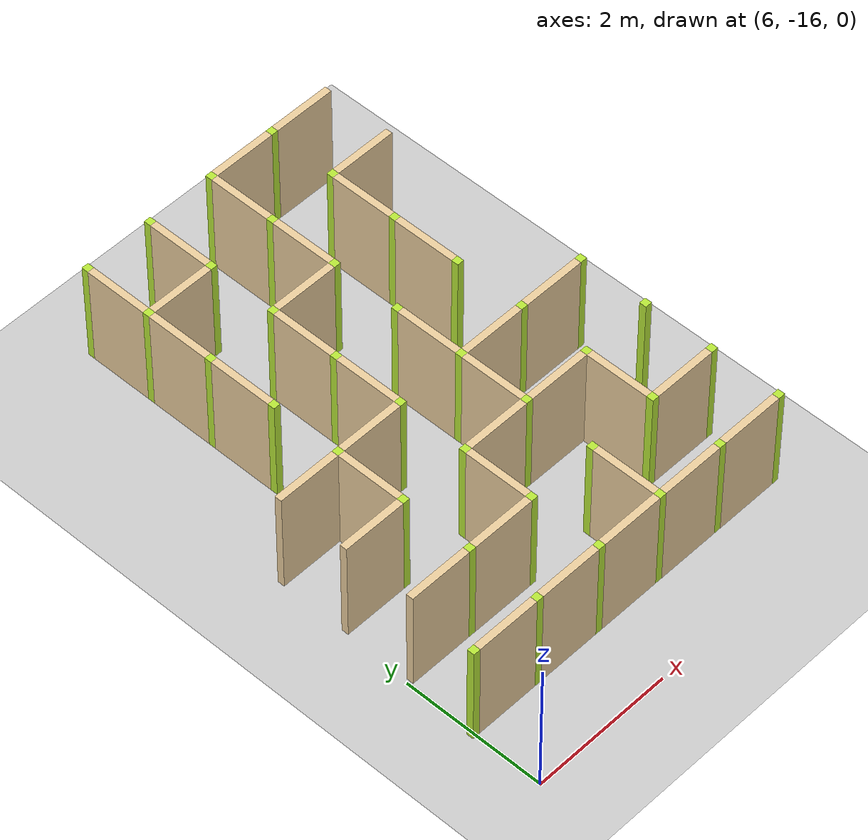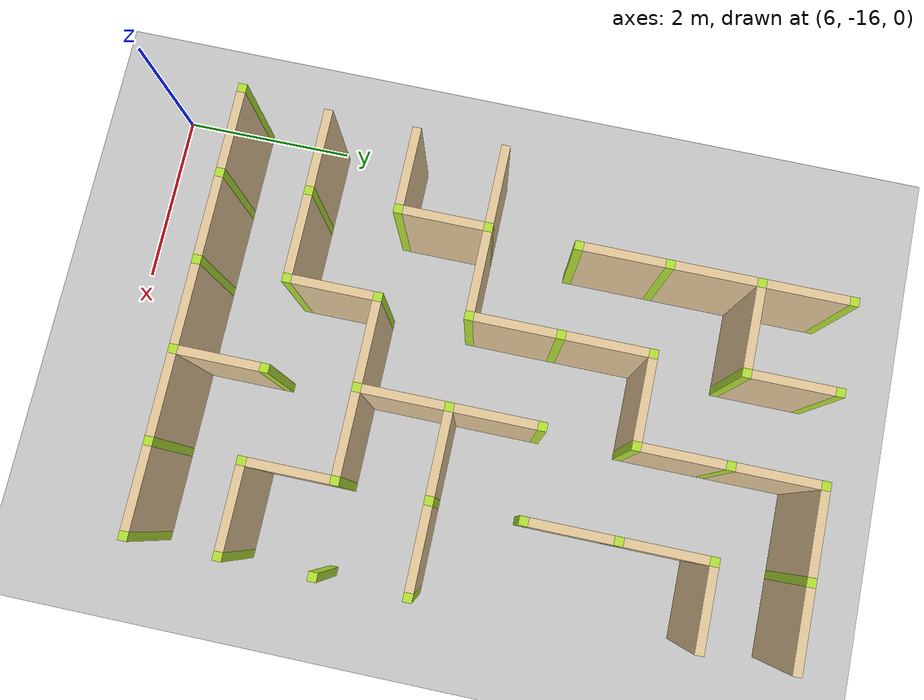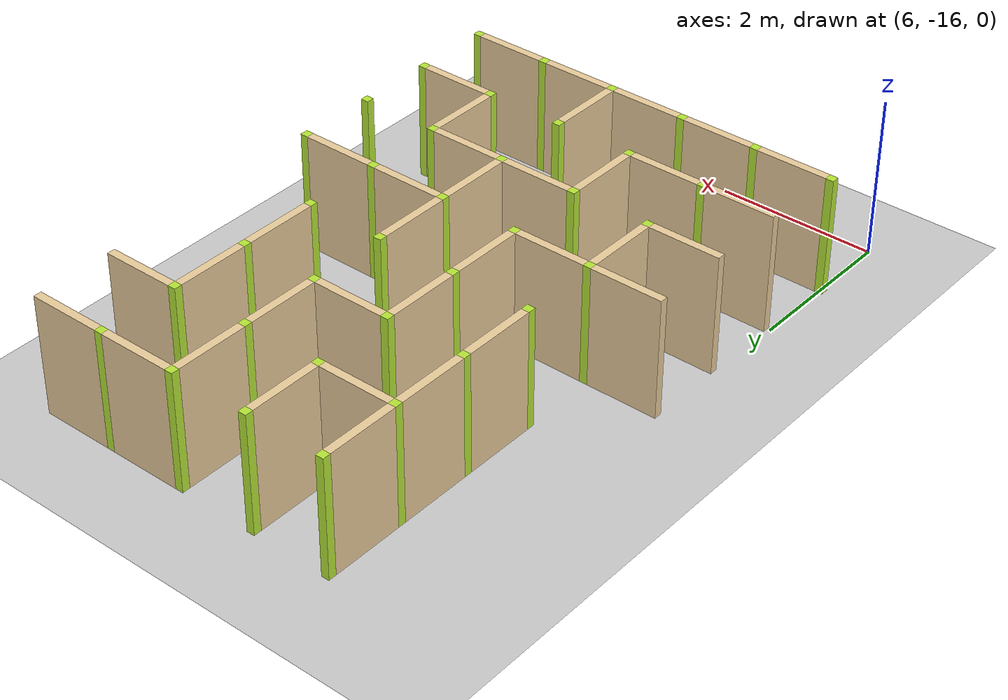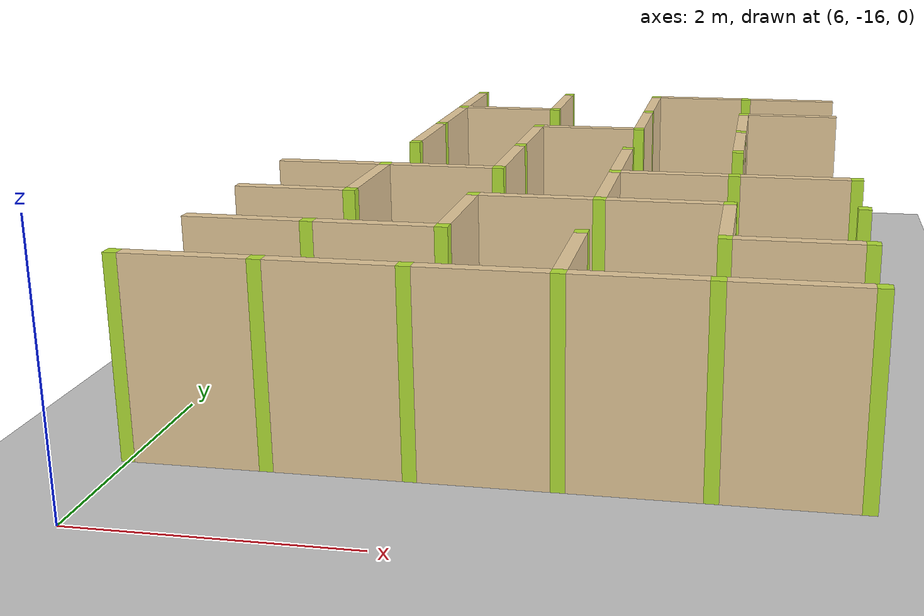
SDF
<sdf version="1.4">
 <world name="maze_world">
  <model name="ground">
   <static>true</static>
   <link name="ground_link">
    <collision name="collision1"><geometry><plane><normal>0 0 1</normal></plane></geometry></collision>
    <visual name="visual1"><geometry><plane><normal>0 0 1</normal><size>100 100</size></plane></geometry></visual>
   </link>
  </model>
  <model name="Untitled">
   <link name="Wall_7_8_v">
    <collision name="Wall_0_Collision">
     <geometry><box><size>0.9 0.1 1.5</size></box></geometry>
     <pose>0 0 0.75 0 -0 0</pose>
    </collision>
    <visual name="Wall_0_Visual">
     <pose>0 0 0.75 0 -0 0</pose>
     <geometry><box><size>0.9 0.1 1.5</size></box></geometry>
     <material>
      <script><uri>file://media/materials/scripts/gazebo.material</uri><name>Gazebo/Grey</name></script>
      <ambient>0.921569 0.807843 0.615686 1</ambient>
     </material>
     <meta><layer>0</layer></meta>
    </visual>
    <pose>7 -8.5 0 0 -0 1.5708</pose>
   </link>
   <link name="Joint_7_-8">
    <collision name="Wall_2_Collision">
     <geometry><box><size>0.1 0.1 1.5</size></box></geometry>
     <pose>0 0 0.75 0 -0 0</pose>
    </collision>
    <visual name="Wall_2_Visual">
     <pose>0 0 0.75 0 -0 0</pose>
     <geometry><box><size>0.1 0.1 1.5</size></box></geometry>
     <material>
      <script><uri>file://media/materials/scripts/gazebo.material</uri><name>Gazebo/Grey</name></script>
      <ambient>0.721569 0.907843 0.215686 1</ambient>
     </material>
     <meta><layer>0</layer></meta>
    </visual>
    <pose>7 -8 0 0 -0 0</pose>
   </link>
   <link name="Wall_8_8_v">
    <collision name="Wall_0_Collision">
     <geometry><box><size>0.9 0.1 1.5</size></box></geometry>
     <pose>0 0 0.75 0 -0 0</pose>
    </collision>
    <visual name="Wall_0_Visual">
     <pose>0 0 0.75 0 -0 0</pose>
     <geometry><box><size>0.9 0.1 1.5</size></box></geometry>
     <material>
      <script><uri>file://media/materials/scripts/gazebo.material</uri><name>Gazebo/Grey</name></script>
      <ambient>0.921569 0.807843 0.615686 1</ambient>
     </material>
     <meta><layer>0</layer></meta>
    </visual>
    <pose>8 -8.5 0 0 -0 1.5708</pose>
   </link>
   <link name="Joint_8_-8">
    <collision name="Wall_2_Collision">
     <geometry><box><size>0.1 0.1 1.5</size></box></geometry>
     <pose>0 0 0.75 0 -0 0</pose>
    </collision>
    <visual name="Wall_2_Visual">
     <pose>0 0 0.75 0 -0 0</pose>
     <geometry><box><size>0.1 0.1 1.5</size></box></geometry>
     <material>
      <script><uri>file://media/materials/scripts/gazebo.material</uri><name>Gazebo/Grey</name></script>
      <ambient>0.721569 0.907843 0.215686 1</ambient>
     </material>
     <meta><layer>0</layer></meta>
    </visual>
    <pose>8 -8 0 0 -0 0</pose>
   </link>
   <link name="Wall_9_8_h">
    <collision name="Wall_0_Collision">
     <geometry><box><size>0.9 0.1 1.5</size></box></geometry>
     <pose>0 0 0.75 0 -0 0</pose>
    </collision>
    <visual name="Wall_0_Visual">
     <pose>0 0 0.75 0 -0 0</pose>
     <geometry><box><size>0.9 0.1 1.5</size></box></geometry>
     <material>
      <script><uri>file://media/materials/scripts/gazebo.material</uri><name>Gazebo/Grey</name></script>
      <ambient>0.921569 0.807843 0.615686 1</ambient>
     </material>
     <meta><layer>0</layer></meta>
    </visual>
    <pose>9.5 -8 0 0 -0 0</pose>
   </link>
   <link name="Wall_9_8_v">
    <collision name="Wall_0_Collision">
     <geometry><box><size>0.9 0.1 1.5</size></box></geometry>
     <pose>0 0 0.75 0 -0 0</pose>
    </collision>
    <visual name="Wall_0_Visual">
     <pose>0 0 0.75 0 -0 0</pose>
     <geometry><box><size>0.9 0.1 1.5</size></box></geometry>
     <material>
      <script><uri>file://media/materials/scripts/gazebo.material</uri><name>Gazebo/Grey</name></script>
      <ambient>0.921569 0.807843 0.615686 1</ambient>
     </material>
     <meta><layer>0</layer></meta>
    </visual>
    <pose>9 -8.5 0 0 -0 1.5708</pose>
   </link>
   <link name="Joint_9_-8">
    <collision name="Wall_2_Collision">
     <geometry><box><size>0.1 0.1 1.5</size></box></geometry>
     <pose>0 0 0.75 0 -0 0</pose>
    </collision>
    <visual name="Wall_2_Visual">
     <pose>0 0 0.75 0 -0 0</pose>
     <geometry><box><size>0.1 0.1 1.5</size></box></geometry>
     <material>
      <script><uri>file://media/materials/scripts/gazebo.material</uri><name>Gazebo/Grey</name></script>
      <ambient>0.721569 0.907843 0.215686 1</ambient>
     </material>
     <meta><layer>0</layer></meta>
    </visual>
    <pose>9 -8 0 0 -0 0</pose>
   </link>
   <link name="Wall_10_8_h">
    <collision name="Wall_0_Collision">
     <geometry><box><size>0.9 0.1 1.5</size></box></geometry>
     <pose>0 0 0.75 0 -0 0</pose>
    </collision>
    <visual name="Wall_0_Visual">
     <pose>0 0 0.75 0 -0 0</pose>
     <geometry><box><size>0.9 0.1 1.5</size></box></geometry>
     <material>
      <script><uri>file://media/materials/scripts/gazebo.material</uri><name>Gazebo/Grey</name></script>
      <ambient>0.921569 0.807843 0.615686 1</ambient>
     </material>
     <meta><layer>0</layer></meta>
    </visual>
    <pose>10.5 -8 0 0 -0 0</pose>
   </link>
   <link name="Joint_10_-8">
    <collision name="Wall_2_Collision">
     <geometry><box><size>0.1 0.1 1.5</size></box></geometry>
     <pose>0 0 0.75 0 -0 0</pose>
    </collision>
    <visual name="Wall_2_Visual">
     <pose>0 0 0.75 0 -0 0</pose>
     <geometry><box><size>0.1 0.1 1.5</size></box></geometry>
     <material>
      <script><uri>file://media/materials/scripts/gazebo.material</uri><name>Gazebo/Grey</name></script>
      <ambient>0.721569 0.907843 0.215686 1</ambient>
     </material>
     <meta><layer>0</layer></meta>
    </visual>
    <pose>10 -8 0 0 -0 0</pose>
   </link>
   <link name="Wall_7_9_h">
    <collision name="Wall_0_Collision">
     <geometry><box><size>0.9 0.1 1.5</size></box></geometry>
     <pose>0 0 0.75 0 -0 0</pose>
    </collision>
    <visual name="Wall_0_Visual">
     <pose>0 0 0.75 0 -0 0</pose>
     <geometry><box><size>0.9 0.1 1.5</size></box></geometry>
     <material>
      <script><uri>file://media/materials/scripts/gazebo.material</uri><name>Gazebo/Grey</name></script>
      <ambient>0.921569 0.807843 0.615686 1</ambient>
     </material>
     <meta><layer>0</layer></meta>
    </visual>
    <pose>7.5 -9 0 0 -0 0</pose>
   </link>
   <link name="Wall_7_9_v">
    <collision name="Wall_0_Collision">
     <geometry><box><size>0.9 0.1 1.5</size></box></geometry>
     <pose>0 0 0.75 0 -0 0</pose>
    </collision>
    <visual name="Wall_0_Visual">
     <pose>0 0 0.75 0 -0 0</pose>
     <geometry><box><size>0.9 0.1 1.5</size></box></geometry>
     <material>
      <script><uri>file://media/materials/scripts/gazebo.material</uri><name>Gazebo/Grey</name></script>
      <ambient>0.921569 0.807843 0.615686 1</ambient>
     </material>
     <meta><layer>0</layer></meta>
    </visual>
    <pose>7 -9.5 0 0 -0 1.5708</pose>
   </link>
   <link name="Joint_7_-9">
    <collision name="Wall_2_Collision">
     <geometry><box><size>0.1 0.1 1.5</size></box></geometry>
     <pose>0 0 0.75 0 -0 0</pose>
    </collision>
    <visual name="Wall_2_Visual">
     <pose>0 0 0.75 0 -0 0</pose>
     <geometry><box><size>0.1 0.1 1.5</size></box></geometry>
     <material>
      <script><uri>file://media/materials/scripts/gazebo.material</uri><name>Gazebo/Grey</name></script>
      <ambient>0.721569 0.907843 0.215686 1</ambient>
     </material>
     <meta><layer>0</layer></meta>
    </visual>
    <pose>7 -9 0 0 -0 0</pose>
   </link>
   <link name="Joint_8_-9">
    <collision name="Wall_2_Collision">
     <geometry><box><size>0.1 0.1 1.5</size></box></geometry>
     <pose>0 0 0.75 0 -0 0</pose>
    </collision>
    <visual name="Wall_2_Visual">
     <pose>0 0 0.75 0 -0 0</pose>
     <geometry><box><size>0.1 0.1 1.5</size></box></geometry>
     <material>
      <script><uri>file://media/materials/scripts/gazebo.material</uri><name>Gazebo/Grey</name></script>
      <ambient>0.721569 0.907843 0.215686 1</ambient>
     </material>
     <meta><layer>0</layer></meta>
    </visual>
    <pose>8 -9 0 0 -0 0</pose>
   </link>
   <link name="Wall_9_9_v">
    <collision name="Wall_0_Collision">
     <geometry><box><size>0.9 0.1 1.5</size></box></geometry>
     <pose>0 0 0.75 0 -0 0</pose>
    </collision>
    <visual name="Wall_0_Visual">
     <pose>0 0 0.75 0 -0 0</pose>
     <geometry><box><size>0.9 0.1 1.5</size></box></geometry>
     <material>
      <script><uri>file://media/materials/scripts/gazebo.material</uri><name>Gazebo/Grey</name></script>
      <ambient>0.921569 0.807843 0.615686 1</ambient>
     </material>
     <meta><layer>0</layer></meta>
    </visual>
    <pose>9 -9.5 0 0 -0 1.5708</pose>
   </link>
   <link name="Joint_9_-9">
    <collision name="Wall_2_Collision">
     <geometry><box><size>0.1 0.1 1.5</size></box></geometry>
     <pose>0 0 0.75 0 -0 0</pose>
    </collision>
    <visual name="Wall_2_Visual">
     <pose>0 0 0.75 0 -0 0</pose>
     <geometry><box><size>0.1 0.1 1.5</size></box></geometry>
     <material>
      <script><uri>file://media/materials/scripts/gazebo.material</uri><name>Gazebo/Grey</name></script>
      <ambient>0.721569 0.907843 0.215686 1</ambient>
     </material>
     <meta><layer>0</layer></meta>
    </visual>
    <pose>9 -9 0 0 -0 0</pose>
   </link>
   <link name="Wall_10_9_h">
    <collision name="Wall_0_Collision">
     <geometry><box><size>0.9 0.1 1.5</size></box></geometry>
     <pose>0 0 0.75 0 -0 0</pose>
    </collision>
    <visual name="Wall_0_Visual">
     <pose>0 0 0.75 0 -0 0</pose>
     <geometry><box><size>0.9 0.1 1.5</size></box></geometry>
     <material>
      <script><uri>file://media/materials/scripts/gazebo.material</uri><name>Gazebo/Grey</name></script>
      <ambient>0.921569 0.807843 0.615686 1</ambient>
     </material>
     <meta><layer>0</layer></meta>
    </visual>
    <pose>10.5 -9 0 0 -0 0</pose>
   </link>
   <link name="Wall_10_9_v">
    <collision name="Wall_0_Collision">
     <geometry><box><size>0.9 0.1 1.5</size></box></geometry>
     <pose>0 0 0.75 0 -0 0</pose>
    </collision>
    <visual name="Wall_0_Visual">
     <pose>0 0 0.75 0 -0 0</pose>
     <geometry><box><size>0.9 0.1 1.5</size></box></geometry>
     <material>
      <script><uri>file://media/materials/scripts/gazebo.material</uri><name>Gazebo/Grey</name></script>
      <ambient>0.921569 0.807843 0.615686 1</ambient>
     </material>
     <meta><layer>0</layer></meta>
    </visual>
    <pose>10 -9.5 0 0 -0 1.5708</pose>
   </link>
   <link name="Joint_10_-9">
    <collision name="Wall_2_Collision">
     <geometry><box><size>0.1 0.1 1.5</size></box></geometry>
     <pose>0 0 0.75 0 -0 0</pose>
    </collision>
    <visual name="Wall_2_Visual">
     <pose>0 0 0.75 0 -0 0</pose>
     <geometry><box><size>0.1 0.1 1.5</size></box></geometry>
     <material>
      <script><uri>file://media/materials/scripts/gazebo.material</uri><name>Gazebo/Grey</name></script>
      <ambient>0.721569 0.907843 0.215686 1</ambient>
     </material>
     <meta><layer>0</layer></meta>
    </visual>
    <pose>10 -9 0 0 -0 0</pose>
   </link>
   <link name="Wall_7_10_v">
    <collision name="Wall_0_Collision">
     <geometry><box><size>0.9 0.1 1.5</size></box></geometry>
     <pose>0 0 0.75 0 -0 0</pose>
    </collision>
    <visual name="Wall_0_Visual">
     <pose>0 0 0.75 0 -0 0</pose>
     <geometry><box><size>0.9 0.1 1.5</size></box></geometry>
     <material>
      <script><uri>file://media/materials/scripts/gazebo.material</uri><name>Gazebo/Grey</name></script>
      <ambient>0.921569 0.807843 0.615686 1</ambient>
     </material>
     <meta><layer>0</layer></meta>
    </visual>
    <pose>7 -10.5 0 0 -0 1.5708</pose>
   </link>
   <link name="Joint_7_-10">
    <collision name="Wall_2_Collision">
     <geometry><box><size>0.1 0.1 1.5</size></box></geometry>
     <pose>0 0 0.75 0 -0 0</pose>
    </collision>
    <visual name="Wall_2_Visual">
     <pose>0 0 0.75 0 -0 0</pose>
     <geometry><box><size>0.1 0.1 1.5</size></box></geometry>
     <material>
      <script><uri>file://media/materials/scripts/gazebo.material</uri><name>Gazebo/Grey</name></script>
      <ambient>0.721569 0.907843 0.215686 1</ambient>
     </material>
     <meta><layer>0</layer></meta>
    </visual>
    <pose>7 -10 0 0 -0 0</pose>
   </link>
   <link name="Wall_8_10_h">
    <collision name="Wall_0_Collision">
     <geometry><box><size>0.9 0.1 1.5</size></box></geometry>
     <pose>0 0 0.75 0 -0 0</pose>
    </collision>
    <visual name="Wall_0_Visual">
     <pose>0 0 0.75 0 -0 0</pose>
     <geometry><box><size>0.9 0.1 1.5</size></box></geometry>
     <material>
      <script><uri>file://media/materials/scripts/gazebo.material</uri><name>Gazebo/Grey</name></script>
      <ambient>0.921569 0.807843 0.615686 1</ambient>
     </material>
     <meta><layer>0</layer></meta>
    </visual>
    <pose>8.5 -10 0 0 -0 0</pose>
   </link>
   <link name="Wall_8_10_v">
    <collision name="Wall_0_Collision">
     <geometry><box><size>0.9 0.1 1.5</size></box></geometry>
     <pose>0 0 0.75 0 -0 0</pose>
    </collision>
    <visual name="Wall_0_Visual">
     <pose>0 0 0.75 0 -0 0</pose>
     <geometry><box><size>0.9 0.1 1.5</size></box></geometry>
     <material>
      <script><uri>file://media/materials/scripts/gazebo.material</uri><name>Gazebo/Grey</name></script>
      <ambient>0.921569 0.807843 0.615686 1</ambient>
     </material>
     <meta><layer>0</layer></meta>
    </visual>
    <pose>8 -10.5 0 0 -0 1.5708</pose>
   </link>
   <link name="Joint_8_-10">
    <collision name="Wall_2_Collision">
     <geometry><box><size>0.1 0.1 1.5</size></box></geometry>
     <pose>0 0 0.75 0 -0 0</pose>
    </collision>
    <visual name="Wall_2_Visual">
     <pose>0 0 0.75 0 -0 0</pose>
     <geometry><box><size>0.1 0.1 1.5</size></box></geometry>
     <material>
      <script><uri>file://media/materials/scripts/gazebo.material</uri><name>Gazebo/Grey</name></script>
      <ambient>0.721569 0.907843 0.215686 1</ambient>
     </material>
     <meta><layer>0</layer></meta>
    </visual>
    <pose>8 -10 0 0 -0 0</pose>
   </link>
   <link name="Joint_9_-10">
    <collision name="Wall_2_Collision">
     <geometry><box><size>0.1 0.1 1.5</size></box></geometry>
     <pose>0 0 0.75 0 -0 0</pose>
    </collision>
    <visual name="Wall_2_Visual">
     <pose>0 0 0.75 0 -0 0</pose>
     <geometry><box><size>0.1 0.1 1.5</size></box></geometry>
     <material>
      <script><uri>file://media/materials/scripts/gazebo.material</uri><name>Gazebo/Grey</name></script>
      <ambient>0.721569 0.907843 0.215686 1</ambient>
     </material>
     <meta><layer>0</layer></meta>
    </visual>
    <pose>9 -10 0 0 -0 0</pose>
   </link>
   <link name="Wall_10_10_v">
    <collision name="Wall_0_Collision">
     <geometry><box><size>0.9 0.1 1.5</size></box></geometry>
     <pose>0 0 0.75 0 -0 0</pose>
    </collision>
    <visual name="Wall_0_Visual">
     <pose>0 0 0.75 0 -0 0</pose>
     <geometry><box><size>0.9 0.1 1.5</size></box></geometry>
     <material>
      <script><uri>file://media/materials/scripts/gazebo.material</uri><name>Gazebo/Grey</name></script>
      <ambient>0.921569 0.807843 0.615686 1</ambient>
     </material>
     <meta><layer>0</layer></meta>
    </visual>
    <pose>10 -10.5 0 0 -0 1.5708</pose>
   </link>
   <link name="Joint_10_-10">
    <collision name="Wall_2_Collision">
     <geometry><box><size>0.1 0.1 1.5</size></box></geometry>
     <pose>0 0 0.75 0 -0 0</pose>
    </collision>
    <visual name="Wall_2_Visual">
     <pose>0 0 0.75 0 -0 0</pose>
     <geometry><box><size>0.1 0.1 1.5</size></box></geometry>
     <material>
      <script><uri>file://media/materials/scripts/gazebo.material</uri><name>Gazebo/Grey</name></script>
      <ambient>0.721569 0.907843 0.215686 1</ambient>
     </material>
     <meta><layer>0</layer></meta>
    </visual>
    <pose>10 -10 0 0 -0 0</pose>
   </link>
   <link name="Joint_7_-11">
    <collision name="Wall_2_Collision">
     <geometry><box><size>0.1 0.1 1.5</size></box></geometry>
     <pose>0 0 0.75 0 -0 0</pose>
    </collision>
    <visual name="Wall_2_Visual">
     <pose>0 0 0.75 0 -0 0</pose>
     <geometry><box><size>0.1 0.1 1.5</size></box></geometry>
     <material>
      <script><uri>file://media/materials/scripts/gazebo.material</uri><name>Gazebo/Grey</name></script>
      <ambient>0.721569 0.907843 0.215686 1</ambient>
     </material>
     <meta><layer>0</layer></meta>
    </visual>
    <pose>7 -11 0 0 -0 0</pose>
   </link>
   <link name="Wall_8_11_v">
    <collision name="Wall_0_Collision">
     <geometry><box><size>0.9 0.1 1.5</size></box></geometry>
     <pose>0 0 0.75 0 -0 0</pose>
    </collision>
    <visual name="Wall_0_Visual">
     <pose>0 0 0.75 0 -0 0</pose>
     <geometry><box><size>0.9 0.1 1.5</size></box></geometry>
     <material>
      <script><uri>file://media/materials/scripts/gazebo.material</uri><name>Gazebo/Grey</name></script>
      <ambient>0.921569 0.807843 0.615686 1</ambient>
     </material>
     <meta><layer>0</layer></meta>
    </visual>
    <pose>8 -11.5 0 0 -0 1.5708</pose>
   </link>
   <link name="Joint_8_-11">
    <collision name="Wall_2_Collision">
     <geometry><box><size>0.1 0.1 1.5</size></box></geometry>
     <pose>0 0 0.75 0 -0 0</pose>
    </collision>
    <visual name="Wall_2_Visual">
     <pose>0 0 0.75 0 -0 0</pose>
     <geometry><box><size>0.1 0.1 1.5</size></box></geometry>
     <material>
      <script><uri>file://media/materials/scripts/gazebo.material</uri><name>Gazebo/Grey</name></script>
      <ambient>0.721569 0.907843 0.215686 1</ambient>
     </material>
     <meta><layer>0</layer></meta>
    </visual>
    <pose>8 -11 0 0 -0 0</pose>
   </link>
   <link name="Wall_9_11_v">
    <collision name="Wall_0_Collision">
     <geometry><box><size>0.9 0.1 1.5</size></box></geometry>
     <pose>0 0 0.75 0 -0 0</pose>
    </collision>
    <visual name="Wall_0_Visual">
     <pose>0 0 0.75 0 -0 0</pose>
     <geometry><box><size>0.9 0.1 1.5</size></box></geometry>
     <material>
      <script><uri>file://media/materials/scripts/gazebo.material</uri><name>Gazebo/Grey</name></script>
      <ambient>0.921569 0.807843 0.615686 1</ambient>
     </material>
     <meta><layer>0</layer></meta>
    </visual>
    <pose>9 -11.5 0 0 -0 1.5708</pose>
   </link>
   <link name="Joint_9_-11">
    <collision name="Wall_2_Collision">
     <geometry><box><size>0.1 0.1 1.5</size></box></geometry>
     <pose>0 0 0.75 0 -0 0</pose>
    </collision>
    <visual name="Wall_2_Visual">
     <pose>0 0 0.75 0 -0 0</pose>
     <geometry><box><size>0.1 0.1 1.5</size></box></geometry>
     <material>
      <script><uri>file://media/materials/scripts/gazebo.material</uri><name>Gazebo/Grey</name></script>
      <ambient>0.721569 0.907843 0.215686 1</ambient>
     </material>
     <meta><layer>0</layer></meta>
    </visual>
    <pose>9 -11 0 0 -0 0</pose>
   </link>
   <link name="Joint_10_-11">
    <collision name="Wall_2_Collision">
     <geometry><box><size>0.1 0.1 1.5</size></box></geometry>
     <pose>0 0 0.75 0 -0 0</pose>
    </collision>
    <visual name="Wall_2_Visual">
     <pose>0 0 0.75 0 -0 0</pose>
     <geometry><box><size>0.1 0.1 1.5</size></box></geometry>
     <material>
      <script><uri>file://media/materials/scripts/gazebo.material</uri><name>Gazebo/Grey</name></script>
      <ambient>0.721569 0.907843 0.215686 1</ambient>
     </material>
     <meta><layer>0</layer></meta>
    </visual>
    <pose>10 -11 0 0 -0 0</pose>
   </link>
   <link name="Wall_6_12_h">
    <collision name="Wall_0_Collision">
     <geometry><box><size>0.9 0.1 1.5</size></box></geometry>
     <pose>0 0 0.75 0 -0 0</pose>
    </collision>
    <visual name="Wall_0_Visual">
     <pose>0 0 0.75 0 -0 0</pose>
     <geometry><box><size>0.9 0.1 1.5</size></box></geometry>
     <material>
      <script><uri>file://media/materials/scripts/gazebo.material</uri><name>Gazebo/Grey</name></script>
      <ambient>0.921569 0.807843 0.615686 1</ambient>
     </material>
     <meta><layer>0</layer></meta>
    </visual>
    <pose>6.5 -12 0 0 -0 0</pose>
   </link>
   <link name="Wall_7_12_h">
    <collision name="Wall_0_Collision">
     <geometry><box><size>0.9 0.1 1.5</size></box></geometry>
     <pose>0 0 0.75 0 -0 0</pose>
    </collision>
    <visual name="Wall_0_Visual">
     <pose>0 0 0.75 0 -0 0</pose>
     <geometry><box><size>0.9 0.1 1.5</size></box></geometry>
     <material>
      <script><uri>file://media/materials/scripts/gazebo.material</uri><name>Gazebo/Grey</name></script>
      <ambient>0.921569 0.807843 0.615686 1</ambient>
     </material>
     <meta><layer>0</layer></meta>
    </visual>
    <pose>7.5 -12 0 0 -0 0</pose>
   </link>
   <link name="Wall_7_12_v">
    <collision name="Wall_0_Collision">
     <geometry><box><size>0.9 0.1 1.5</size></box></geometry>
     <pose>0 0 0.75 0 -0 0</pose>
    </collision>
    <visual name="Wall_0_Visual">
     <pose>0 0 0.75 0 -0 0</pose>
     <geometry><box><size>0.9 0.1 1.5</size></box></geometry>
     <material>
      <script><uri>file://media/materials/scripts/gazebo.material</uri><name>Gazebo/Grey</name></script>
      <ambient>0.921569 0.807843 0.615686 1</ambient>
     </material>
     <meta><layer>0</layer></meta>
    </visual>
    <pose>7 -12.5 0 0 -0 1.5708</pose>
   </link>
   <link name="Joint_7_-12">
    <collision name="Wall_2_Collision">
     <geometry><box><size>0.1 0.1 1.5</size></box></geometry>
     <pose>0 0 0.75 0 -0 0</pose>
    </collision>
    <visual name="Wall_2_Visual">
     <pose>0 0 0.75 0 -0 0</pose>
     <geometry><box><size>0.1 0.1 1.5</size></box></geometry>
     <material>
      <script><uri>file://media/materials/scripts/gazebo.material</uri><name>Gazebo/Grey</name></script>
      <ambient>0.721569 0.907843 0.215686 1</ambient>
     </material>
     <meta><layer>0</layer></meta>
    </visual>
    <pose>7 -12 0 0 -0 0</pose>
   </link>
   <link name="Joint_8_-12">
    <collision name="Wall_2_Collision">
     <geometry><box><size>0.1 0.1 1.5</size></box></geometry>
     <pose>0 0 0.75 0 -0 0</pose>
    </collision>
    <visual name="Wall_2_Visual">
     <pose>0 0 0.75 0 -0 0</pose>
     <geometry><box><size>0.1 0.1 1.5</size></box></geometry>
     <material>
      <script><uri>file://media/materials/scripts/gazebo.material</uri><name>Gazebo/Grey</name></script>
      <ambient>0.721569 0.907843 0.215686 1</ambient>
     </material>
     <meta><layer>0</layer></meta>
    </visual>
    <pose>8 -12 0 0 -0 0</pose>
   </link>
   <link name="Wall_9_12_h">
    <collision name="Wall_0_Collision">
     <geometry><box><size>0.9 0.1 1.5</size></box></geometry>
     <pose>0 0 0.75 0 -0 0</pose>
    </collision>
    <visual name="Wall_0_Visual">
     <pose>0 0 0.75 0 -0 0</pose>
     <geometry><box><size>0.9 0.1 1.5</size></box></geometry>
     <material>
      <script><uri>file://media/materials/scripts/gazebo.material</uri><name>Gazebo/Grey</name></script>
      <ambient>0.921569 0.807843 0.615686 1</ambient>
     </material>
     <meta><layer>0</layer></meta>
    </visual>
    <pose>9.5 -12 0 0 -0 0</pose>
   </link>
   <link name="Wall_9_12_v">
    <collision name="Wall_0_Collision">
     <geometry><box><size>0.9 0.1 1.5</size></box></geometry>
     <pose>0 0 0.75 0 -0 0</pose>
    </collision>
    <visual name="Wall_0_Visual">
     <pose>0 0 0.75 0 -0 0</pose>
     <geometry><box><size>0.9 0.1 1.5</size></box></geometry>
     <material>
      <script><uri>file://media/materials/scripts/gazebo.material</uri><name>Gazebo/Grey</name></script>
      <ambient>0.921569 0.807843 0.615686 1</ambient>
     </material>
     <meta><layer>0</layer></meta>
    </visual>
    <pose>9 -12.5 0 0 -0 1.5708</pose>
   </link>
   <link name="Joint_9_-12">
    <collision name="Wall_2_Collision">
     <geometry><box><size>0.1 0.1 1.5</size></box></geometry>
     <pose>0 0 0.75 0 -0 0</pose>
    </collision>
    <visual name="Wall_2_Visual">
     <pose>0 0 0.75 0 -0 0</pose>
     <geometry><box><size>0.1 0.1 1.5</size></box></geometry>
     <material>
      <script><uri>file://media/materials/scripts/gazebo.material</uri><name>Gazebo/Grey</name></script>
      <ambient>0.721569 0.907843 0.215686 1</ambient>
     </material>
     <meta><layer>0</layer></meta>
    </visual>
    <pose>9 -12 0 0 -0 0</pose>
   </link>
   <link name="Wall_10_12_h">
    <collision name="Wall_0_Collision">
     <geometry><box><size>0.9 0.1 1.5</size></box></geometry>
     <pose>0 0 0.75 0 -0 0</pose>
    </collision>
    <visual name="Wall_0_Visual">
     <pose>0 0 0.75 0 -0 0</pose>
     <geometry><box><size>0.9 0.1 1.5</size></box></geometry>
     <material>
      <script><uri>file://media/materials/scripts/gazebo.material</uri><name>Gazebo/Grey</name></script>
      <ambient>0.921569 0.807843 0.615686 1</ambient>
     </material>
     <meta><layer>0</layer></meta>
    </visual>
    <pose>10.5 -12 0 0 -0 0</pose>
   </link>
   <link name="Joint_10_-12">
    <collision name="Wall_2_Collision">
     <geometry><box><size>0.1 0.1 1.5</size></box></geometry>
     <pose>0 0 0.75 0 -0 0</pose>
    </collision>
    <visual name="Wall_2_Visual">
     <pose>0 0 0.75 0 -0 0</pose>
     <geometry><box><size>0.1 0.1 1.5</size></box></geometry>
     <material>
      <script><uri>file://media/materials/scripts/gazebo.material</uri><name>Gazebo/Grey</name></script>
      <ambient>0.721569 0.907843 0.215686 1</ambient>
     </material>
     <meta><layer>0</layer></meta>
    </visual>
    <pose>10 -12 0 0 -0 0</pose>
   </link>
   <link name="Joint_11_-12">
    <collision name="Wall_2_Collision">
     <geometry><box><size>0.1 0.1 1.5</size></box></geometry>
     <pose>0 0 0.75 0 -0 0</pose>
    </collision>
    <visual name="Wall_2_Visual">
     <pose>0 0 0.75 0 -0 0</pose>
     <geometry><box><size>0.1 0.1 1.5</size></box></geometry>
     <material>
      <script><uri>file://media/materials/scripts/gazebo.material</uri><name>Gazebo/Grey</name></script>
      <ambient>0.721569 0.907843 0.215686 1</ambient>
     </material>
     <meta><layer>0</layer></meta>
    </visual>
    <pose>11 -12 0 0 -0 0</pose>
   </link>
   <link name="Wall_6_13_h">
    <collision name="Wall_0_Collision">
     <geometry><box><size>0.9 0.1 1.5</size></box></geometry>
     <pose>0 0 0.75 0 -0 0</pose>
    </collision>
    <visual name="Wall_0_Visual">
     <pose>0 0 0.75 0 -0 0</pose>
     <geometry><box><size>0.9 0.1 1.5</size></box></geometry>
     <material>
      <script><uri>file://media/materials/scripts/gazebo.material</uri><name>Gazebo/Grey</name></script>
      <ambient>0.921569 0.807843 0.615686 1</ambient>
     </material>
     <meta><layer>0</layer></meta>
    </visual>
    <pose>6.5 -13 0 0 -0 0</pose>
   </link>
   <link name="Joint_7_-13">
    <collision name="Wall_2_Collision">
     <geometry><box><size>0.1 0.1 1.5</size></box></geometry>
     <pose>0 0 0.75 0 -0 0</pose>
    </collision>
    <visual name="Wall_2_Visual">
     <pose>0 0 0.75 0 -0 0</pose>
     <geometry><box><size>0.1 0.1 1.5</size></box></geometry>
     <material>
      <script><uri>file://media/materials/scripts/gazebo.material</uri><name>Gazebo/Grey</name></script>
      <ambient>0.721569 0.907843 0.215686 1</ambient>
     </material>
     <meta><layer>0</layer></meta>
    </visual>
    <pose>7 -13 0 0 -0 0</pose>
   </link>
   <link name="Wall_8_13_h">
    <collision name="Wall_0_Collision">
     <geometry><box><size>0.9 0.1 1.5</size></box></geometry>
     <pose>0 0 0.75 0 -0 0</pose>
    </collision>
    <visual name="Wall_0_Visual">
     <pose>0 0 0.75 0 -0 0</pose>
     <geometry><box><size>0.9 0.1 1.5</size></box></geometry>
     <material>
      <script><uri>file://media/materials/scripts/gazebo.material</uri><name>Gazebo/Grey</name></script>
      <ambient>0.921569 0.807843 0.615686 1</ambient>
     </material>
     <meta><layer>0</layer></meta>
    </visual>
    <pose>8.5 -13 0 0 -0 0</pose>
   </link>
   <link name="Wall_8_13_v">
    <collision name="Wall_0_Collision">
     <geometry><box><size>0.9 0.1 1.5</size></box></geometry>
     <pose>0 0 0.75 0 -0 0</pose>
    </collision>
    <visual name="Wall_0_Visual">
     <pose>0 0 0.75 0 -0 0</pose>
     <geometry><box><size>0.9 0.1 1.5</size></box></geometry>
     <material>
      <script><uri>file://media/materials/scripts/gazebo.material</uri><name>Gazebo/Grey</name></script>
      <ambient>0.921569 0.807843 0.615686 1</ambient>
     </material>
     <meta><layer>0</layer></meta>
    </visual>
    <pose>8 -13.5 0 0 -0 1.5708</pose>
   </link>
   <link name="Joint_8_-13">
    <collision name="Wall_2_Collision">
     <geometry><box><size>0.1 0.1 1.5</size></box></geometry>
     <pose>0 0 0.75 0 -0 0</pose>
    </collision>
    <visual name="Wall_2_Visual">
     <pose>0 0 0.75 0 -0 0</pose>
     <geometry><box><size>0.1 0.1 1.5</size></box></geometry>
     <material>
      <script><uri>file://media/materials/scripts/gazebo.material</uri><name>Gazebo/Grey</name></script>
      <ambient>0.721569 0.907843 0.215686 1</ambient>
     </material>
     <meta><layer>0</layer></meta>
    </visual>
    <pose>8 -13 0 0 -0 0</pose>
   </link>
   <link name="Wall_9_13_h">
    <collision name="Wall_0_Collision">
     <geometry><box><size>0.9 0.1 1.5</size></box></geometry>
     <pose>0 0 0.75 0 -0 0</pose>
    </collision>
    <visual name="Wall_0_Visual">
     <pose>0 0 0.75 0 -0 0</pose>
     <geometry><box><size>0.9 0.1 1.5</size></box></geometry>
     <material>
      <script><uri>file://media/materials/scripts/gazebo.material</uri><name>Gazebo/Grey</name></script>
      <ambient>0.921569 0.807843 0.615686 1</ambient>
     </material>
     <meta><layer>0</layer></meta>
    </visual>
    <pose>9.5 -13 0 0 -0 0</pose>
   </link>
   <link name="Joint_9_-13">
    <collision name="Wall_2_Collision">
     <geometry><box><size>0.1 0.1 1.5</size></box></geometry>
     <pose>0 0 0.75 0 -0 0</pose>
    </collision>
    <visual name="Wall_2_Visual">
     <pose>0 0 0.75 0 -0 0</pose>
     <geometry><box><size>0.1 0.1 1.5</size></box></geometry>
     <material>
      <script><uri>file://media/materials/scripts/gazebo.material</uri><name>Gazebo/Grey</name></script>
      <ambient>0.721569 0.907843 0.215686 1</ambient>
     </material>
     <meta><layer>0</layer></meta>
    </visual>
    <pose>9 -13 0 0 -0 0</pose>
   </link>
   <link name="Wall_10_13_v">
    <collision name="Wall_0_Collision">
     <geometry><box><size>0.9 0.1 1.5</size></box></geometry>
     <pose>0 0 0.75 0 -0 0</pose>
    </collision>
    <visual name="Wall_0_Visual">
     <pose>0 0 0.75 0 -0 0</pose>
     <geometry><box><size>0.9 0.1 1.5</size></box></geometry>
     <material>
      <script><uri>file://media/materials/scripts/gazebo.material</uri><name>Gazebo/Grey</name></script>
      <ambient>0.921569 0.807843 0.615686 1</ambient>
     </material>
     <meta><layer>0</layer></meta>
    </visual>
    <pose>10 -13.5 0 0 -0 1.5708</pose>
   </link>
   <link name="Joint_10_-13">
    <collision name="Wall_2_Collision">
     <geometry><box><size>0.1 0.1 1.5</size></box></geometry>
     <pose>0 0 0.75 0 -0 0</pose>
    </collision>
    <visual name="Wall_2_Visual">
     <pose>0 0 0.75 0 -0 0</pose>
     <geometry><box><size>0.1 0.1 1.5</size></box></geometry>
     <material>
      <script><uri>file://media/materials/scripts/gazebo.material</uri><name>Gazebo/Grey</name></script>
      <ambient>0.721569 0.907843 0.215686 1</ambient>
     </material>
     <meta><layer>0</layer></meta>
    </visual>
    <pose>10 -13 0 0 -0 0</pose>
   </link>
   <link name="Joint_11_-13">
    <collision name="Wall_2_Collision">
     <geometry><box><size>0.1 0.1 1.5</size></box></geometry>
     <pose>0 0 0.75 0 -0 0</pose>
    </collision>
    <visual name="Wall_2_Visual">
     <pose>0 0 0.75 0 -0 0</pose>
     <geometry><box><size>0.1 0.1 1.5</size></box></geometry>
     <material>
      <script><uri>file://media/materials/scripts/gazebo.material</uri><name>Gazebo/Grey</name></script>
      <ambient>0.721569 0.907843 0.215686 1</ambient>
     </material>
     <meta><layer>0</layer></meta>
    </visual>
    <pose>11 -13 0 0 -0 0</pose>
   </link>
   <link name="Wall_6_14_h">
    <collision name="Wall_0_Collision">
     <geometry><box><size>0.9 0.1 1.5</size></box></geometry>
     <pose>0 0 0.75 0 -0 0</pose>
    </collision>
    <visual name="Wall_0_Visual">
     <pose>0 0 0.75 0 -0 0</pose>
     <geometry><box><size>0.9 0.1 1.5</size></box></geometry>
     <material>
      <script><uri>file://media/materials/scripts/gazebo.material</uri><name>Gazebo/Grey</name></script>
      <ambient>0.921569 0.807843 0.615686 1</ambient>
     </material>
     <meta><layer>0</layer></meta>
    </visual>
    <pose>6.5 -14 0 0 -0 0</pose>
   </link>
   <link name="Wall_6_15_h">
    <collision name="Wall_0_Collision">
     <geometry><box><size>0.9 0.1 1.5</size></box></geometry>
     <pose>0 0 0.75 0 -0 0</pose>
    </collision>
    <visual name="Wall_0_Visual">
     <pose>0 0 0.75 0 -0 0</pose>
     <geometry><box><size>0.9 0.1 1.5</size></box></geometry>
     <material>
      <script><uri>file://media/materials/scripts/gazebo.material</uri><name>Gazebo/Grey</name></script>
      <ambient>0.921569 0.807843 0.615686 1</ambient>
     </material>
     <meta><layer>0</layer></meta>
    </visual>
    <pose>6.5 -15 0 0 -0 0</pose>
   </link>
   <link name="Joint_6_-15">
    <collision name="Wall_2_Collision">
     <geometry><box><size>0.1 0.1 1.5</size></box></geometry>
     <pose>0 0 0.75 0 -0 0</pose>
    </collision>
    <visual name="Wall_2_Visual">
     <pose>0 0 0.75 0 -0 0</pose>
     <geometry><box><size>0.1 0.1 1.5</size></box></geometry>
     <material>
      <script><uri>file://media/materials/scripts/gazebo.material</uri><name>Gazebo/Grey</name></script>
      <ambient>0.721569 0.907843 0.215686 1</ambient>
     </material>
     <meta><layer>0</layer></meta>
    </visual>
    <pose>6 -15 0 0 -0 0</pose>
   </link>
   <link name="Wall_7_14_h">
    <collision name="Wall_0_Collision">
     <geometry><box><size>0.9 0.1 1.5</size></box></geometry>
     <pose>0 0 0.75 0 -0 0</pose>
    </collision>
    <visual name="Wall_0_Visual">
     <pose>0 0 0.75 0 -0 0</pose>
     <geometry><box><size>0.9 0.1 1.5</size></box></geometry>
     <material>
      <script><uri>file://media/materials/scripts/gazebo.material</uri><name>Gazebo/Grey</name></script>
      <ambient>0.921569 0.807843 0.615686 1</ambient>
     </material>
     <meta><layer>0</layer></meta>
    </visual>
    <pose>7.5 -14 0 0 -0 0</pose>
   </link>
   <link name="Joint_7_-14">
    <collision name="Wall_2_Collision">
     <geometry><box><size>0.1 0.1 1.5</size></box></geometry>
     <pose>0 0 0.75 0 -0 0</pose>
    </collision>
    <visual name="Wall_2_Visual">
     <pose>0 0 0.75 0 -0 0</pose>
     <geometry><box><size>0.1 0.1 1.5</size></box></geometry>
     <material>
      <script><uri>file://media/materials/scripts/gazebo.material</uri><name>Gazebo/Grey</name></script>
      <ambient>0.721569 0.907843 0.215686 1</ambient>
     </material>
     <meta><layer>0</layer></meta>
    </visual>
    <pose>7 -14 0 0 -0 0</pose>
   </link>
   <link name="Wall_7_15_h">
    <collision name="Wall_0_Collision">
     <geometry><box><size>0.9 0.1 1.5</size></box></geometry>
     <pose>0 0 0.75 0 -0 0</pose>
    </collision>
    <visual name="Wall_0_Visual">
     <pose>0 0 0.75 0 -0 0</pose>
     <geometry><box><size>0.9 0.1 1.5</size></box></geometry>
     <material>
      <script><uri>file://media/materials/scripts/gazebo.material</uri><name>Gazebo/Grey</name></script>
      <ambient>0.921569 0.807843 0.615686 1</ambient>
     </material>
     <meta><layer>0</layer></meta>
    </visual>
    <pose>7.5 -15 0 0 -0 0</pose>
   </link>
   <link name="Joint_7_-15">
    <collision name="Wall_2_Collision">
     <geometry><box><size>0.1 0.1 1.5</size></box></geometry>
     <pose>0 0 0.75 0 -0 0</pose>
    </collision>
    <visual name="Wall_2_Visual">
     <pose>0 0 0.75 0 -0 0</pose>
     <geometry><box><size>0.1 0.1 1.5</size></box></geometry>
     <material>
      <script><uri>file://media/materials/scripts/gazebo.material</uri><name>Gazebo/Grey</name></script>
      <ambient>0.721569 0.907843 0.215686 1</ambient>
     </material>
     <meta><layer>0</layer></meta>
    </visual>
    <pose>7 -15 0 0 -0 0</pose>
   </link>
   <link name="Joint_8_-14">
    <collision name="Wall_2_Collision">
     <geometry><box><size>0.1 0.1 1.5</size></box></geometry>
     <pose>0 0 0.75 0 -0 0</pose>
    </collision>
    <visual name="Wall_2_Visual">
     <pose>0 0 0.75 0 -0 0</pose>
     <geometry><box><size>0.1 0.1 1.5</size></box></geometry>
     <material>
      <script><uri>file://media/materials/scripts/gazebo.material</uri><name>Gazebo/Grey</name></script>
      <ambient>0.721569 0.907843 0.215686 1</ambient>
     </material>
     <meta><layer>0</layer></meta>
    </visual>
    <pose>8 -14 0 0 -0 0</pose>
   </link>
   <link name="Wall_8_15_h">
    <collision name="Wall_0_Collision">
     <geometry><box><size>0.9 0.1 1.5</size></box></geometry>
     <pose>0 0 0.75 0 -0 0</pose>
    </collision>
    <visual name="Wall_0_Visual">
     <pose>0 0 0.75 0 -0 0</pose>
     <geometry><box><size>0.9 0.1 1.5</size></box></geometry>
     <material>
      <script><uri>file://media/materials/scripts/gazebo.material</uri><name>Gazebo/Grey</name></script>
      <ambient>0.921569 0.807843 0.615686 1</ambient>
     </material>
     <meta><layer>0</layer></meta>
    </visual>
    <pose>8.5 -15 0 0 -0 0</pose>
   </link>
   <link name="Joint_8_-15">
    <collision name="Wall_2_Collision">
     <geometry><box><size>0.1 0.1 1.5</size></box></geometry>
     <pose>0 0 0.75 0 -0 0</pose>
    </collision>
    <visual name="Wall_2_Visual">
     <pose>0 0 0.75 0 -0 0</pose>
     <geometry><box><size>0.1 0.1 1.5</size></box></geometry>
     <material>
      <script><uri>file://media/materials/scripts/gazebo.material</uri><name>Gazebo/Grey</name></script>
      <ambient>0.721569 0.907843 0.215686 1</ambient>
     </material>
     <meta><layer>0</layer></meta>
    </visual>
    <pose>8 -15 0 0 -0 0</pose>
   </link>
   <link name="Wall_9_14_v">
    <collision name="Wall_0_Collision">
     <geometry><box><size>0.9 0.1 1.5</size></box></geometry>
     <pose>0 0 0.75 0 -0 0</pose>
    </collision>
    <visual name="Wall_0_Visual">
     <pose>0 0 0.75 0 -0 0</pose>
     <geometry><box><size>0.9 0.1 1.5</size></box></geometry>
     <material>
      <script><uri>file://media/materials/scripts/gazebo.material</uri><name>Gazebo/Grey</name></script>
      <ambient>0.921569 0.807843 0.615686 1</ambient>
     </material>
     <meta><layer>0</layer></meta>
    </visual>
    <pose>9 -14.5 0 0 -0 1.5708</pose>
   </link>
   <link name="Joint_9_-14">
    <collision name="Wall_2_Collision">
     <geometry><box><size>0.1 0.1 1.5</size></box></geometry>
     <pose>0 0 0.75 0 -0 0</pose>
    </collision>
    <visual name="Wall_2_Visual">
     <pose>0 0 0.75 0 -0 0</pose>
     <geometry><box><size>0.1 0.1 1.5</size></box></geometry>
     <material>
      <script><uri>file://media/materials/scripts/gazebo.material</uri><name>Gazebo/Grey</name></script>
      <ambient>0.721569 0.907843 0.215686 1</ambient>
     </material>
     <meta><layer>0</layer></meta>
    </visual>
    <pose>9 -14 0 0 -0 0</pose>
   </link>
   <link name="Wall_9_15_h">
    <collision name="Wall_0_Collision">
     <geometry><box><size>0.9 0.1 1.5</size></box></geometry>
     <pose>0 0 0.75 0 -0 0</pose>
    </collision>
    <visual name="Wall_0_Visual">
     <pose>0 0 0.75 0 -0 0</pose>
     <geometry><box><size>0.9 0.1 1.5</size></box></geometry>
     <material>
      <script><uri>file://media/materials/scripts/gazebo.material</uri><name>Gazebo/Grey</name></script>
      <ambient>0.921569 0.807843 0.615686 1</ambient>
     </material>
     <meta><layer>0</layer></meta>
    </visual>
    <pose>9.5 -15 0 0 -0 0</pose>
   </link>
   <link name="Joint_9_-15">
    <collision name="Wall_2_Collision">
     <geometry><box><size>0.1 0.1 1.5</size></box></geometry>
     <pose>0 0 0.75 0 -0 0</pose>
    </collision>
    <visual name="Wall_2_Visual">
     <pose>0 0 0.75 0 -0 0</pose>
     <geometry><box><size>0.1 0.1 1.5</size></box></geometry>
     <material>
      <script><uri>file://media/materials/scripts/gazebo.material</uri><name>Gazebo/Grey</name></script>
      <ambient>0.721569 0.907843 0.215686 1</ambient>
     </material>
     <meta><layer>0</layer></meta>
    </visual>
    <pose>9 -15 0 0 -0 0</pose>
   </link>
   <link name="Wall_10_14_h">
    <collision name="Wall_0_Collision">
     <geometry><box><size>0.9 0.1 1.5</size></box></geometry>
     <pose>0 0 0.75 0 -0 0</pose>
    </collision>
    <visual name="Wall_0_Visual">
     <pose>0 0 0.75 0 -0 0</pose>
     <geometry><box><size>0.9 0.1 1.5</size></box></geometry>
     <material>
      <script><uri>file://media/materials/scripts/gazebo.material</uri><name>Gazebo/Grey</name></script>
      <ambient>0.921569 0.807843 0.615686 1</ambient>
     </material>
     <meta><layer>0</layer></meta>
    </visual>
    <pose>10.5 -14 0 0 -0 0</pose>
   </link>
   <link name="Joint_10_-14">
    <collision name="Wall_2_Collision">
     <geometry><box><size>0.1 0.1 1.5</size></box></geometry>
     <pose>0 0 0.75 0 -0 0</pose>
    </collision>
    <visual name="Wall_2_Visual">
     <pose>0 0 0.75 0 -0 0</pose>
     <geometry><box><size>0.1 0.1 1.5</size></box></geometry>
     <material>
      <script><uri>file://media/materials/scripts/gazebo.material</uri><name>Gazebo/Grey</name></script>
      <ambient>0.721569 0.907843 0.215686 1</ambient>
     </material>
     <meta><layer>0</layer></meta>
    </visual>
    <pose>10 -14 0 0 -0 0</pose>
   </link>
   <link name="Wall_10_15_h">
    <collision name="Wall_0_Collision">
     <geometry><box><size>0.9 0.1 1.5</size></box></geometry>
     <pose>0 0 0.75 0 -0 0</pose>
    </collision>
    <visual name="Wall_0_Visual">
     <pose>0 0 0.75 0 -0 0</pose>
     <geometry><box><size>0.9 0.1 1.5</size></box></geometry>
     <material>
      <script><uri>file://media/materials/scripts/gazebo.material</uri><name>Gazebo/Grey</name></script>
      <ambient>0.921569 0.807843 0.615686 1</ambient>
     </material>
     <meta><layer>0</layer></meta>
    </visual>
    <pose>10.5 -15 0 0 -0 0</pose>
   </link>
   <link name="Joint_10_-15">
    <collision name="Wall_2_Collision">
     <geometry><box><size>0.1 0.1 1.5</size></box></geometry>
     <pose>0 0 0.75 0 -0 0</pose>
    </collision>
    <visual name="Wall_2_Visual">
     <pose>0 0 0.75 0 -0 0</pose>
     <geometry><box><size>0.1 0.1 1.5</size></box></geometry>
     <material>
      <script><uri>file://media/materials/scripts/gazebo.material</uri><name>Gazebo/Grey</name></script>
      <ambient>0.721569 0.907843 0.215686 1</ambient>
     </material>
     <meta><layer>0</layer></meta>
    </visual>
    <pose>10 -15 0 0 -0 0</pose>
   </link>
   <link name="Joint_11_-14">
    <collision name="Wall_2_Collision">
     <geometry><box><size>0.1 0.1 1.5</size></box></geometry>
     <pose>0 0 0.75 0 -0 0</pose>
    </collision>
    <visual name="Wall_2_Visual">
     <pose>0 0 0.75 0 -0 0</pose>
     <geometry><box><size>0.1 0.1 1.5</size></box></geometry>
     <material>
      <script><uri>file://media/materials/scripts/gazebo.material</uri><name>Gazebo/Grey</name></script>
      <ambient>0.721569 0.907843 0.215686 1</ambient>
     </material>
     <meta><layer>0</layer></meta>
    </visual>
    <pose>11 -14 0 0 -0 0</pose>
   </link>
   <link name="Joint_11_-15">
    <collision name="Wall_2_Collision">
     <geometry><box><size>0.1 0.1 1.5</size></box></geometry>
     <pose>0 0 0.75 0 -0 0</pose>
    </collision>
    <visual name="Wall_2_Visual">
     <pose>0 0 0.75 0 -0 0</pose>
     <geometry><box><size>0.1 0.1 1.5</size></box></geometry>
     <material>
      <script><uri>file://media/materials/scripts/gazebo.material</uri><name>Gazebo/Grey</name></script>
      <ambient>0.721569 0.907843 0.215686 1</ambient>
     </material>
     <meta><layer>0</layer></meta>
    </visual>
    <pose>11 -15 0 0 -0 0</pose>
   </link>
   <static>1</static>
  </model>
 </world>
</sdf>
